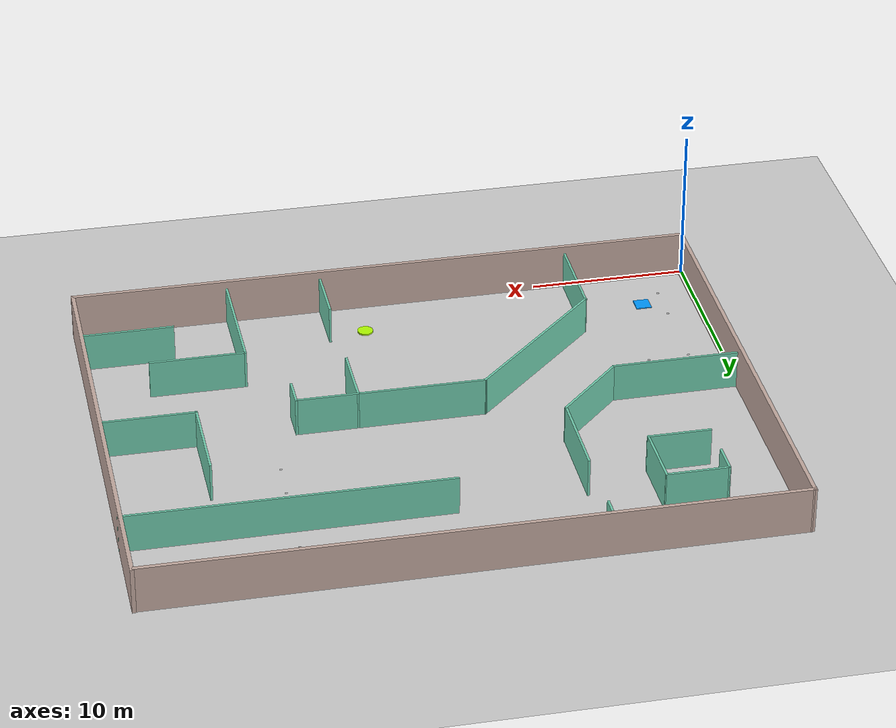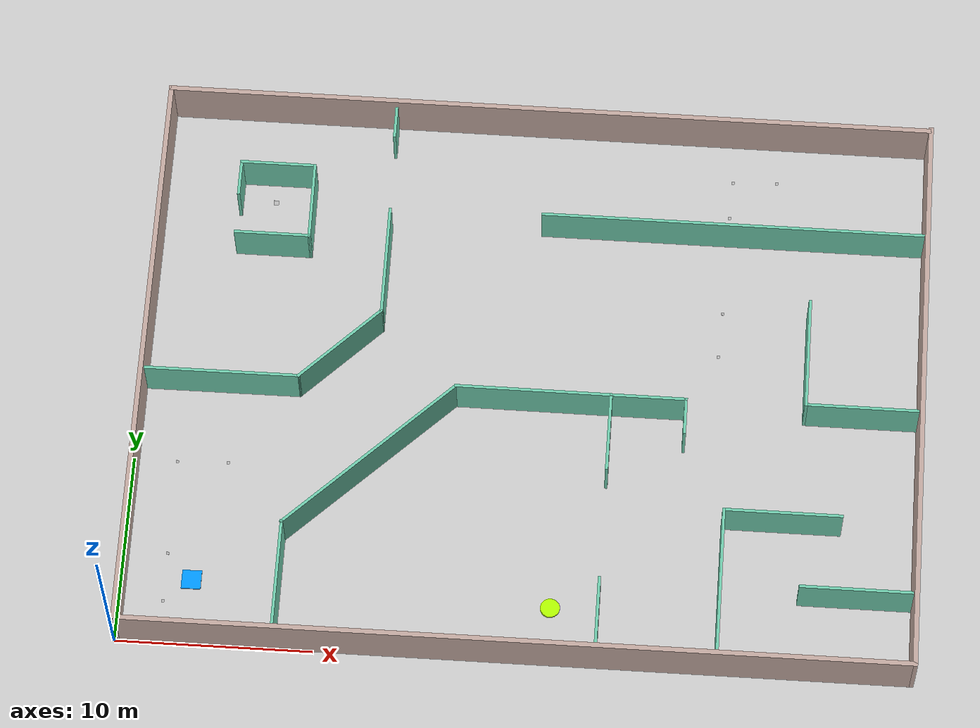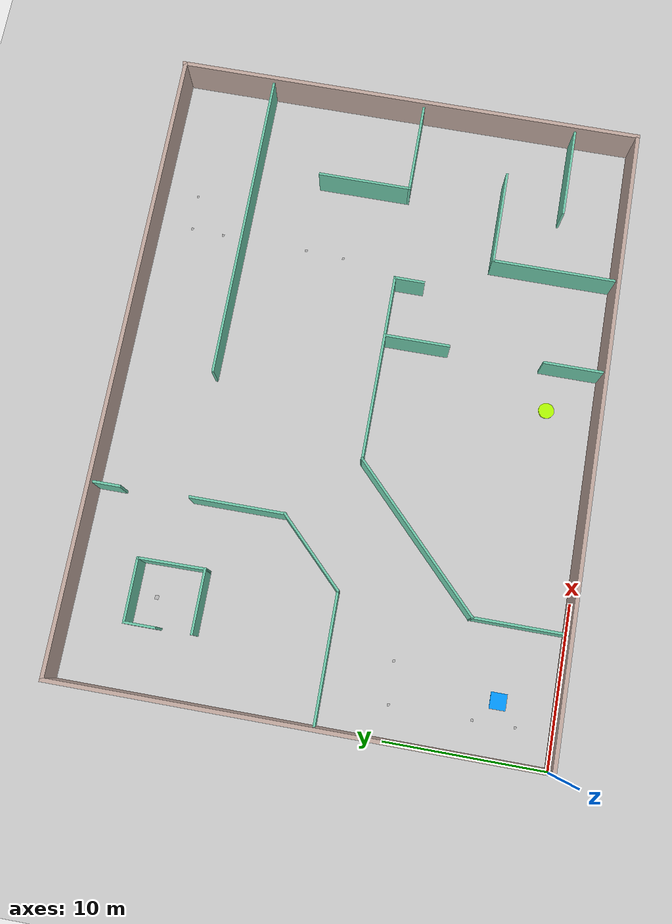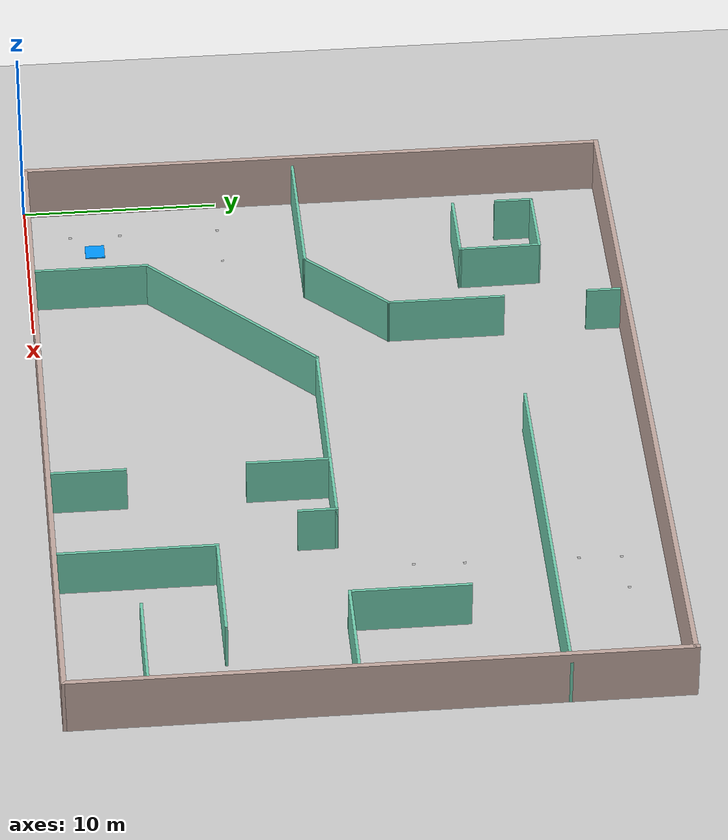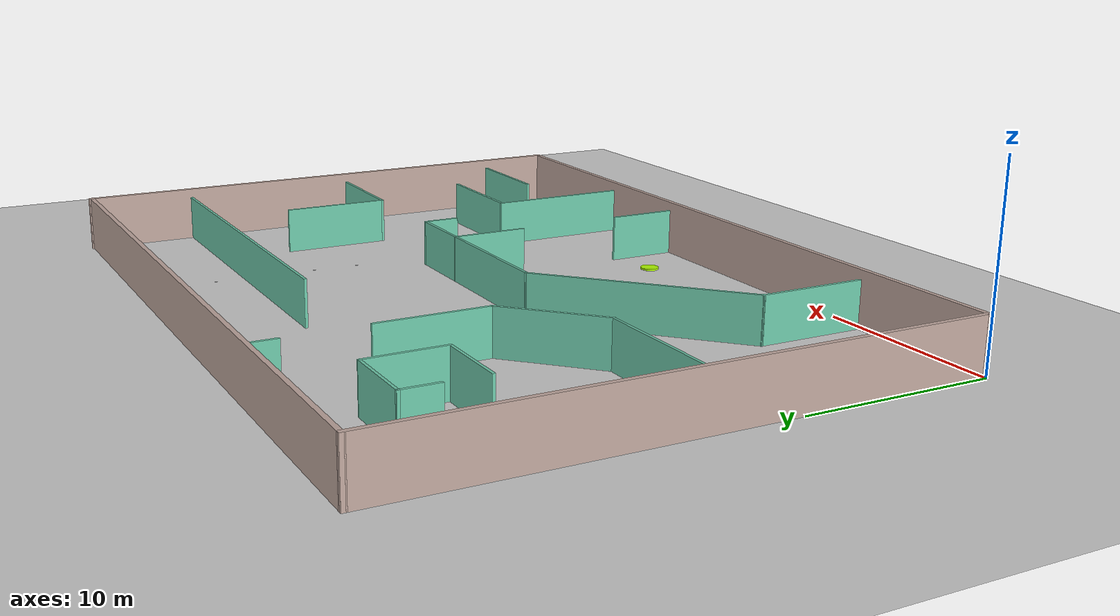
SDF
<sdf version="1.6">
 <world name="default">
  <light name="sun" type="directional">
   <cast_shadows>0</cast_shadows>
   <pose>0 0 10 0 -0 0</pose>
   <diffuse>0.8 0.8 0.8 1</diffuse>
   <specular>0.2 0.2 0.2 1</specular>
   <attenuation>
    <range>1000</range>
    <constant>0.9</constant>
    <linear>0.01</linear>
    <quadratic>0.001</quadratic>
   </attenuation>
   <direction>-0.5 0.1 -0.9</direction>
  </light>
  <plugin name="ros_interface_plugin" filename="librotors_gazebo_ros_interface_plugin.so"/>
  <model name="ground_plane">
   <static>1</static>
   <link name="link">
    <collision name="collision">
     <geometry><plane><normal>0 0 1</normal><size>100 100</size></plane></geometry>
     <surface>
      <contact><collide_bitmask>65535</collide_bitmask></contact>
      <friction><ode><mu>100</mu><mu2>50</mu2></ode></friction>
     </surface>
    </collision>
    <visual name="visual">
     <cast_shadows>0</cast_shadows>
     <geometry><plane><normal>0 0 1</normal><size>100 100</size></plane></geometry>
     <material>
      <script><uri>file://media/materials/scripts/gazebo.material</uri><name>Gazebo/Grey</name></script>
     </material>
    </visual>
   </link>
  </model>
  <gravity>0 0 -9.8</gravity>
  <magnetic_field>6e-06 2.3e-05 -4.2e-05</magnetic_field>
  <atmosphere type="adiabatic"/>
  <physics name="default_physics" default="0" type="ode">
   <max_step_size>0.001</max_step_size>
   <real_time_factor>1</real_time_factor>
   <real_time_update_rate>1000</real_time_update_rate>
  </physics>
  <scene><ambient>0.4 0.4 0.4 1</ambient><background>0.7 0.7 0.7 1</background><shadows>1</shadows></scene>
  <spherical_coordinates>
   <surface_model>EARTH_WGS84</surface_model>
   <latitude_deg>0</latitude_deg>
   <longitude_deg>0</longitude_deg>
   <elevation>0</elevation>
   <heading_deg>0</heading_deg>
  </spherical_coordinates>
  <model name="world_final.world">
   <pose>20.1571 15.1446 0 0 -0 0</pose>
   <link name="Wall_10">
    <collision name="Wall_10_Collision">
     <geometry><box><size>30.25 0.25 3</size></box></geometry>
     <pose>0 0 1.5 0 -0 0</pose>
    </collision>
    <visual name="Wall_10_Visual">
     <pose>0 0 1.5 0 -0 0</pose>
     <geometry><box><size>30.25 0.25 3</size></box></geometry>
     <material>
      <script><uri>file://media/materials/scripts/gazebo.material</uri><name>Gazebo/Grey</name></script>
      <ambient>0.760784 0.662745 0.627451 1</ambient>
     </material>
     <meta><layer>0</layer></meta>
    </visual>
    <pose>-20.0312 -0.019177 0 0 -0 1.5708</pose>
   </link>
   <link name="Wall_16">
    <collision name="Wall_16_Collision">
     <geometry><box><size>11.7015 0.15 2.5</size></box></geometry>
     <pose>0 0 1.25 0 -0 0</pose>
    </collision>
    <visual name="Wall_16_Visual">
     <pose>0 0 1.25 0 -0 0</pose>
     <geometry><box><size>11.7015 0.15 2.5</size></box></geometry>
     <material>
      <script><uri>file://media/materials/scripts/gazebo.material</uri><name>Gazebo/Grey</name></script>
      <ambient>0.435294 0.796078 0.67451 1</ambient>
     </material>
     <meta><layer>0</layer></meta>
    </visual>
    <pose>-7.99118 -5.0937 0 0 -0 0.773461</pose>
   </link>
   <link name="Wall_17">
    <collision name="Wall_17_Collision">
     <geometry><box><size>8.12245 0.15 2.5</size></box></geometry>
     <pose>0 0 1.25 0 -0 0</pose>
    </collision>
    <visual name="Wall_17_Visual">
     <pose>0 0 1.25 0 -0 0</pose>
     <geometry><box><size>8.12245 0.15 2.5</size></box></geometry>
     <material>
      <script><uri>file://media/materials/scripts/gazebo.material</uri><name>Gazebo/Grey</name></script>
      <ambient>0.435294 0.796078 0.67451 1</ambient>
     </material>
     <meta><layer>0</layer></meta>
    </visual>
    <pose>0.127824 -1.0677 0 0 0 -0.002258</pose>
   </link>
   <link name="Wall_19">
    <collision name="Wall_19_Collision">
     <geometry><box><size>6 0.15 2.5</size></box></geometry>
     <pose>0 0 1.25 0 -0 0</pose>
    </collision>
    <visual name="Wall_19_Visual">
     <pose>0 0 1.25 0 -0 0</pose>
     <geometry><box><size>6 0.15 2.5</size></box></geometry>
     <material>
      <script><uri>file://media/materials/scripts/gazebo.material</uri><name>Gazebo/Grey</name></script>
      <ambient>0.435294 0.796078 0.67451 1</ambient>
     </material>
     <meta><layer>0</layer></meta>
    </visual>
    <pose>-12.1237 -12.0537 0 0 0 -1.5708</pose>
   </link>
   <link name="Wall_21">
    <collision name="Wall_21_Collision">
     <geometry><box><size>8.11035 0.15 2.5</size></box></geometry>
     <pose>0 0 1.25 0 -0 0</pose>
    </collision>
    <visual name="Wall_21_Visual">
     <pose>0 0 1.25 0 -0 0</pose>
     <geometry><box><size>8.11035 0.15 2.5</size></box></geometry>
     <material>
      <script><uri>file://media/materials/scripts/gazebo.material</uri><name>Gazebo/Grey</name></script>
      <ambient>0.435294 0.796078 0.67451 1</ambient>
     </material>
     <meta><layer>0</layer></meta>
    </visual>
    <pose>-15.9387 -1.02571 0 0 -0 0.003015</pose>
   </link>
   <link name="Wall_24">
    <collision name="Wall_24_Collision">
     <geometry><box><size>5.75 0.15 2.5</size></box></geometry>
     <pose>0 0 1.25 0 -0 0</pose>
    </collision>
    <visual name="Wall_24_Visual">
     <pose>0 0 1.25 0 -0 0</pose>
     <geometry><box><size>5.75 0.15 2.5</size></box></geometry>
     <material>
      <script><uri>file://media/materials/scripts/gazebo.material</uri><name>Gazebo/Grey</name></script>
      <ambient>0.435294 0.796078 0.67451 1</ambient>
     </material>
     <meta><layer>0</layer></meta>
    </visual>
    <pose>-9.97868 0.966295 0 0 -0 0.785398</pose>
   </link>
   <link name="Wall_26">
    <collision name="Wall_26_Collision">
     <geometry><box><size>6 0.15 2.5</size></box></geometry>
     <pose>0 0 1.25 0 -0 0</pose>
    </collision>
    <visual name="Wall_26_Visual">
     <pose>0 0 1.25 0 -0 0</pose>
     <geometry><box><size>6 0.15 2.5</size></box></geometry>
     <material>
      <script><uri>file://media/materials/scripts/gazebo.material</uri><name>Gazebo/Grey</name></script>
      <ambient>0.435294 0.796078 0.67451 1</ambient>
     </material>
     <meta><layer>0</layer></meta>
    </visual>
    <pose>-7.99868 5.87129 0 0 -0 1.5708</pose>
   </link>
   <link name="Wall_29">
    <collision name="Wall_29_Collision">
     <geometry><box><size>4.23222 0.15 2.5</size></box></geometry>
     <pose>0 0 1.25 0 -0 0</pose>
    </collision>
    <visual name="Wall_29_Visual">
     <pose>0 0 1.25 0 -0 0</pose>
     <geometry><box><size>4.23222 0.15 2.5</size></box></geometry>
     <material>
      <script><uri>file://media/materials/scripts/gazebo.material</uri><name>Gazebo/Grey</name></script>
      <ambient>0.435294 0.796078 0.67451 1</ambient>
     </material>
     <meta><layer>0</layer></meta>
    </visual>
    <pose>4.11432 -3.1177 0 0 0 -1.5708</pose>
   </link>
   <link name="Wall_31">
    <collision name="Wall_31_Collision">
     <geometry><box><size>4 0.15 2.5</size></box></geometry>
     <pose>0 0 1.25 0 -0 0</pose>
    </collision>
    <visual name="Wall_31_Visual">
     <pose>0 0 1.25 0 -0 0</pose>
     <geometry><box><size>4 0.15 2.5</size></box></geometry>
     <material>
      <script><uri>file://media/materials/scripts/gazebo.material</uri><name>Gazebo/Grey</name></script>
      <ambient>0.435294 0.796078 0.67451 1</ambient>
     </material>
     <meta><layer>0</layer></meta>
    </visual>
    <pose>6.03932 -1.07671 0 0 -0 0</pose>
   </link>
   <link name="Wall_33">
    <collision name="Wall_33_Collision">
     <geometry><box><size>6 0.15 2.5</size></box></geometry>
     <pose>0 0 1.25 0 -0 0</pose>
    </collision>
    <visual name="Wall_33_Visual">
     <pose>0 0 1.25 0 -0 0</pose>
     <geometry><box><size>6 0.15 2.5</size></box></geometry>
     <material>
      <script><uri>file://media/materials/scripts/gazebo.material</uri><name>Gazebo/Grey</name></script>
      <ambient>0.435294 0.796078 0.67451 1</ambient>
     </material>
     <meta><layer>0</layer></meta>
    </visual>
    <pose>17.0263 -0.983705 0 0 -0 3.14159</pose>
   </link>
   <link name="Wall_34">
    <collision name="Wall_34_Collision">
     <geometry><box><size>6 0.15 2.5</size></box></geometry>
     <pose>0 0 1.25 0 -0 0</pose>
    </collision>
    <visual name="Wall_34_Visual">
     <pose>0 0 1.25 0 -0 0</pose>
     <geometry><box><size>6 0.15 2.5</size></box></geometry>
     <material>
      <script><uri>file://media/materials/scripts/gazebo.material</uri><name>Gazebo/Grey</name></script>
      <ambient>0.435294 0.796078 0.67451 1</ambient>
     </material>
     <meta><layer>0</layer></meta>
    </visual>
    <pose>14.1013 1.94129 0 0 -0 1.5708</pose>
   </link>
   <link name="Wall_36">
    <collision name="Wall_36_Collision">
     <geometry><box><size>4 0.15 2.5</size></box></geometry>
     <pose>0 0 1.25 0 -0 0</pose>
    </collision>
    <visual name="Wall_36_Visual">
     <pose>0 0 1.25 0 -0 0</pose>
     <geometry><box><size>4 0.15 2.5</size></box></geometry>
     <material>
      <script><uri>file://media/materials/scripts/gazebo.material</uri><name>Gazebo/Grey</name></script>
      <ambient>0.435294 0.796078 0.67451 1</ambient>
     </material>
     <meta><layer>0</layer></meta>
    </visual>
    <pose>4.09632 -13.0997 0 0 0 -1.5708</pose>
   </link>
   <link name="Wall_38">
    <collision name="Wall_38_Collision">
     <geometry><box><size>6 0.15 2.5</size></box></geometry>
     <pose>0 0 1.25 0 -0 0</pose>
    </collision>
    <visual name="Wall_38_Visual">
     <pose>0 0 1.25 0 -0 0</pose>
     <geometry><box><size>6 0.15 2.5</size></box></geometry>
     <material>
      <script><uri>file://media/materials/scripts/gazebo.material</uri><name>Gazebo/Grey</name></script>
      <ambient>0.435294 0.796078 0.67451 1</ambient>
     </material>
     <meta><layer>0</layer></meta>
    </visual>
    <pose>17.1173 -10.9947 0 0 -0 3.14159</pose>
   </link>
   <link name="Wall_40">
    <collision name="Wall_40_Collision">
     <geometry><box><size>6.12079 0.15 2.5</size></box></geometry>
     <pose>0 0 1.25 0 -0 0</pose>
    </collision>
    <visual name="Wall_40_Visual">
     <pose>0 0 1.25 0 -0 0</pose>
     <geometry><box><size>6.12079 0.15 2.5</size></box></geometry>
     <material>
      <script><uri>file://media/materials/scripts/gazebo.material</uri><name>Gazebo/Grey</name></script>
      <ambient>0.435294 0.796078 0.67451 1</ambient>
     </material>
     <meta><layer>0</layer></meta>
    </visual>
    <pose>13.1578 -7.05671 0 0 -0 3.14159</pose>
   </link>
   <link name="Wall_41">
    <collision name="Wall_41_Collision">
     <geometry><box><size>8 0.15 2.5</size></box></geometry>
     <pose>0 0 1.25 0 -0 0</pose>
    </collision>
    <visual name="Wall_41_Visual">
     <pose>0 0 1.25 0 -0 0</pose>
     <geometry><box><size>8 0.15 2.5</size></box></geometry>
     <material>
      <script><uri>file://media/materials/scripts/gazebo.material</uri><name>Gazebo/Grey</name></script>
      <ambient>0.435294 0.796078 0.67451 1</ambient>
     </material>
     <meta><layer>0</layer></meta>
    </visual>
    <pose>10.1723 -10.9817 0 0 0 -1.5708</pose>
   </link>
   <link name="Wall_43">
    <collision name="Wall_43_Collision">
     <geometry><box><size>20.25 0.15 2.5</size></box></geometry>
     <pose>0 0 1.25 0 -0 0</pose>
    </collision>
    <visual name="Wall_43_Visual">
     <pose>0 0 1.25 0 -0 0</pose>
     <geometry><box><size>20.25 0.15 2.5</size></box></geometry>
     <material>
      <script><uri>file://media/materials/scripts/gazebo.material</uri><name>Gazebo/Grey</name></script>
      <ambient>0.435294 0.796078 0.67451 1</ambient>
     </material>
     <meta><layer>0</layer></meta>
    </visual>
    <pose>10.0313 9.0413 0 0 -0 3.14159</pose>
   </link>
   <link name="Wall_45">
    <collision name="Wall_45_Collision">
     <geometry><box><size>4 0.15 2.5</size></box></geometry>
     <pose>0 0 1.25 0 -0 0</pose>
    </collision>
    <visual name="Wall_45_Visual">
     <pose>0 0 1.25 0 -0 0</pose>
     <geometry><box><size>4 0.15 2.5</size></box></geometry>
     <material>
      <script><uri>file://media/materials/scripts/gazebo.material</uri><name>Gazebo/Grey</name></script>
      <ambient>0.435294 0.796078 0.67451 1</ambient>
     </material>
     <meta><layer>0</layer></meta>
    </visual>
    <pose>-14.0597 11.1143 0 0 -0 0</pose>
   </link>
   <link name="Wall_46">
    <collision name="Wall_46_Collision">
     <geometry><box><size>4.25 0.15 2.5</size></box></geometry>
     <pose>0 0 1.25 0 -0 0</pose>
    </collision>
    <visual name="Wall_46_Visual">
     <pose>0 0 1.25 0 -0 0</pose>
     <geometry><box><size>4.25 0.15 2.5</size></box></geometry>
     <material>
      <script><uri>file://media/materials/scripts/gazebo.material</uri><name>Gazebo/Grey</name></script>
      <ambient>0.435294 0.796078 0.67451 1</ambient>
     </material>
     <meta><layer>0</layer></meta>
    </visual>
    <pose>-12.1147 9.06429 0 0 0 -1.56104</pose>
   </link>
   <link name="Wall_47">
    <collision name="Wall_47_Collision">
     <geometry><box><size>4 0.15 2.5</size></box></geometry>
     <pose>0 0 1.25 0 -0 0</pose>
    </collision>
    <visual name="Wall_47_Visual">
     <pose>0 0 1.25 0 -0 0</pose>
     <geometry><box><size>4 0.15 2.5</size></box></geometry>
     <material>
      <script><uri>file://media/materials/scripts/gazebo.material</uri><name>Gazebo/Grey</name></script>
      <ambient>0.435294 0.796078 0.67451 1</ambient>
     </material>
     <meta><layer>0</layer></meta>
    </visual>
    <pose>-14.0197 7.01429 0 0 -0 3.14159</pose>
   </link>
   <link name="Wall_49">
    <collision name="Wall_49_Collision">
     <geometry><box><size>2 0.15 2.5</size></box></geometry>
     <pose>0 0 1.25 0 -0 0</pose>
    </collision>
    <visual name="Wall_49_Visual">
     <pose>0 0 1.25 0 -0 0</pose>
     <geometry><box><size>2 0.15 2.5</size></box></geometry>
     <material>
      <script><uri>file://media/materials/scripts/gazebo.material</uri><name>Gazebo/Grey</name></script>
      <ambient>0.435294 0.796078 0.67451 1</ambient>
     </material>
     <meta><layer>0</layer></meta>
    </visual>
    <pose>-8.10268 14.0863 0 0 0 -1.5708</pose>
   </link>
   <link name="Wall_51">
    <collision name="Wall_51_Collision">
     <geometry><box><size>2 0.15 2.5</size></box></geometry>
     <pose>0 0 1.25 0 -0 0</pose>
    </collision>
    <visual name="Wall_51_Visual">
     <pose>0 0 1.25 0 -0 0</pose>
     <geometry><box><size>2 0.15 2.5</size></box></geometry>
     <material>
      <script><uri>file://media/materials/scripts/gazebo.material</uri><name>Gazebo/Grey</name></script>
      <ambient>0.435294 0.796078 0.67451 1</ambient>
     </material>
     <meta><layer>0</layer></meta>
    </visual>
    <pose>-15.9847 10.1893 0 0 0 -1.5708</pose>
   </link>
   <link name="Wall_53">
    <collision name="Wall_53_Collision">
     <geometry><box><size>2 0.15 2.5</size></box></geometry>
     <pose>0 0 1.25 0 -0 0</pose>
    </collision>
    <visual name="Wall_53_Visual">
     <pose>0 0 1.25 0 -0 0</pose>
     <geometry><box><size>2 0.15 2.5</size></box></geometry>
     <material>
      <script><uri>file://media/materials/scripts/gazebo.material</uri><name>Gazebo/Grey</name></script>
      <ambient>0.435294 0.796078 0.67451 1</ambient>
     </material>
     <meta><layer>0</layer></meta>
    </visual>
    <pose>7.96432 -2.0017 0 0 0 -1.5708</pose>
   </link>
   <link name="Wall_6">
    <collision name="Wall_6_Collision">
     <geometry><box><size>40.25 0.25 3</size></box></geometry>
     <pose>0 0 1.5 0 -0 0</pose>
    </collision>
    <visual name="Wall_6_Visual">
     <pose>0 0 1.5 0 -0 0</pose>
     <geometry><box><size>40.25 0.25 3</size></box></geometry>
     <material>
      <script><uri>file://media/materials/scripts/gazebo.material</uri><name>Gazebo/Grey</name></script>
      <ambient>0.760784 0.662745 0.627451 1</ambient>
     </material>
     <meta><layer>0</layer></meta>
    </visual>
    <pose>-0.031209 14.966 0 0 0 -0.000742</pose>
   </link>
   <link name="Wall_8">
    <collision name="Wall_8_Collision">
     <geometry><box><size>30.25 0.25 3</size></box></geometry>
     <pose>0 0 1.5 0 -0 0</pose>
    </collision>
    <visual name="Wall_8_Visual">
     <pose>0 0 1.5 0 -0 0</pose>
     <geometry><box><size>30.25 0.25 3</size></box></geometry>
     <material>
      <script><uri>file://media/materials/scripts/gazebo.material</uri><name>Gazebo/Grey</name></script>
      <ambient>0.760784 0.662745 0.627451 1</ambient>
     </material>
     <meta><layer>0</layer></meta>
    </visual>
    <pose>20.0303 0.019295 0 0 0 -1.5708</pose>
   </link>
   <link name="Wall_9">
    <collision name="Wall_9_Collision">
     <geometry><box><size>40.3115 0.25 3</size></box></geometry>
     <pose>0 0 1.5 0 -0 0</pose>
    </collision>
    <visual name="Wall_9_Visual">
     <pose>0 0 1.5 0 -0 0</pose>
     <geometry><box><size>40.3115 0.25 3</size></box></geometry>
     <material>
      <script><uri>file://media/materials/scripts/gazebo.material</uri><name>Gazebo/Grey</name></script>
      <ambient>0.760784 0.662745 0.627451 1</ambient>
     </material>
     <meta><layer>0</layer></meta>
    </visual>
    <pose>-0.00044 -14.9999 0 0 0 -3.14063</pose>
   </link>
   <static>1</static>
  </model>
  <model name="charge">
   <link name="link">
    <inertial>
     <mass>1</mass>
     <inertia>
      <ixx>0.166667</ixx>
      <ixy>0</ixy>
      <ixz>0</ixz>
      <iyy>0.166667</iyy>
      <iyz>0</iyz>
      <izz>0.166667</izz>
     </inertia>
    </inertial>
    <visual name="visual">
     <geometry><box><size>1 1 0.069113</size></box></geometry>
     <material>
      <script><name>Gazebo/Grey</name><uri>file://media/materials/scripts/gazebo.material</uri></script>
      <shader type="pixel"><normal_map>__default__</normal_map></shader>
      <ambient>0 0.6 1 1</ambient>
      <diffuse>0.7 0.7 0.7 1</diffuse>
      <specular>0.01 0.01 0.01 1</specular>
      <emissive>0 0 0 1</emissive>
     </material>
     <cast_shadows>0</cast_shadows>
    </visual>
   </link>
   <static>1</static>
   <pose>3.54642 3.52038 0.034557 0 -0 0</pose>
  </model>
  <model name="check">
   <link name="link">
    <inertial>
     <mass>1</mass>
     <inertia><ixx>0.145833</ixx><ixy>0</ixy><ixz>0</ixz><iyy>0.145833</iyy><iyz>0</iyz><izz>0.125</izz></inertia>
    </inertial>
    <visual name="visual">
     <geometry><cylinder><radius>0.5</radius><length>0.104489</length></cylinder></geometry>
     <material>
      <script><name>Gazebo/Grey</name><uri>file://media/materials/scripts/gazebo.material</uri></script>
      <shader type="pixel"><normal_map>__default__</normal_map></shader>
      <ambient>0.7 1 0 1</ambient>
      <diffuse>0.7 0.7 0.7 1</diffuse>
      <specular>0.01 0.01 0.01 1</specular>
      <emissive>0 0 0 1</emissive>
     </material>
     <cast_shadows>0</cast_shadows>
    </visual>
   </link>
   <static>1</static>
   <pose>21.8276 3.13698 0 0 -0 0</pose>
  </model>
  <include><uri>model://marker_husky</uri><pose>6.0 25.0 0.4 0.0 0.0 0.0</pose></include>
  <include><uri>model://marker_0</uri><pose>2.2 2.3 0.001 0.0 0.0 0.0</pose></include>
  <include><uri>model://marker_1</uri><pose>2.2 4.9 0.001 0.0 0.0 0.0</pose></include>
  <include><uri>model://marker_3</uri><pose>2.2 10.0 0.001 0.0 0.0 0.0</pose></include>
  <include><uri>model://marker_10</uri><pose>4.8 10.1 0.001 0.0 0.0 0.0</pose></include>
  <include><uri>model://marker_100</uri><pose>29.7 17.7 0.001 0.0 0.0 0.0</pose></include>
  <include><uri>model://marker_101</uri><pose>29.8 20.2 0.001 0.0 0.0 0.0</pose></include>
  <include><uri>model://marker_102</uri><pose>29.9 25.8 0.001 0.0 0.0 0.0</pose></include>
  <include><uri>model://marker_103</uri><pose>30.0 27.9 0.001 0.0 0.0 0.0</pose></include>
  <include><uri>model://marker_104</uri><pose>32.3 28.0 0.001 0.0 0.0 0.0</pose></include>
 </world>
</sdf>

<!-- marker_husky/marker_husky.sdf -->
<sdf version="1.4">
  <model name="marker_0">
    <static>0</static>
    <link name="link_marker_husky">
      <gravity>false</gravity>
      <visual name="visual_marker_0">
        <geometry>
          <box>
            <size>0.25 0.25 0.001</size>
            <!-- SIZE OF THE MARKER + MARGIN -->
          </box>
        </geometry>
        <material>
          <script>
	    <uri>model://marker_husky/material/scripts</uri>
	    <uri>model://marker_husky/material/textures</uri>
            <name>marker_husky</name>
          </script>
        </material>
      </visual>
      <collision name="collision">
        <geometry>
          <box>
            <size>0.25 0.25 0.02</size>
            <!-- SIZE OF THE MARKER + MARGIN -->
          </box>
        </geometry>
      </collision>
    </link>
  </model>
</sdf>

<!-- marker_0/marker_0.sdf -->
<sdf version="1.4">
  <model name="marker_0">
    <static>1</static>
    <link name="link_marker_0">
      <gravity>false</gravity>
      <visual name="visual_marker_0">
        <geometry>
          <box>
            <size>0.15 0.15 0.001</size>
            <!-- SIZE OF THE MARKER + MARGIN -->
          </box>
        </geometry>
        <material>
          <script>
	    <uri>model://marker_0/material/scripts</uri>
	    <uri>model://marker_0/material/textures</uri>
            <name>marker_0</name>
          </script>
        </material>
      </visual>
      <collision name="collision">
        <geometry>
          <box>
            <size>0.15 0.15 0.02</size>
            <!-- SIZE OF THE MARKER + MARGIN -->
          </box>
        </geometry>
      </collision>
    </link>
  </model>
</sdf>

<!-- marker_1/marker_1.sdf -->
<sdf version="1.4">
  <model name="marker_1">
    <static>1</static>
    <link name="link_marker_1">
      <gravity>false</gravity>
      <visual name="visual_marker_1">
        <geometry>
          <box>
            <size>0.15 0.15 0.001</size>
            <!-- SIZE OF THE MARKER + MARGIN -->
          </box>
        </geometry>
        <material>
          <script>
	    <uri>model://marker_1/material/scripts</uri>
	    <uri>model://marker_1/material/textures</uri>
            <name>marker_1</name>
          </script>
        </material>
      </visual>
      <collision name="collision">
        <geometry>
          <box>
            <size>0.15 0.15 0.02</size>
            <!-- SIZE OF THE MARKER + MARGIN -->
          </box>
        </geometry>
      </collision>
    </link>
  </model>
</sdf>

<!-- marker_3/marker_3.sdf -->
<sdf version="1.4">
  <model name="marker_3">
    <static>1</static>
    <link name="link_marker_3">
      <gravity>false</gravity>
      <visual name="visual_marker_3">
        <geometry>
          <box>
            <size>0.15 0.15 0.001</size>
            <!-- SIZE OF THE MARKER + MARGIN -->
          </box>
        </geometry>
        <material>
          <script>
	    <uri>model://marker_3/material/scripts</uri>
	    <uri>model://marker_3/material/textures</uri>
            <name>marker_3</name>
          </script>
        </material>
      </visual>
      <collision name="collision">
        <geometry>
          <box>
            <size>0.15 0.15 0.02</size>
            <!-- SIZE OF THE MARKER + MARGIN -->
          </box>
        </geometry>
      </collision>
    </link>
  </model>
</sdf>

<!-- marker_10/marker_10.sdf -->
<sdf version="1.4">
  <model name="marker_10">
    <static>1</static>
    <link name="link_marker_10">
      <gravity>false</gravity>
      <visual name="visual_marker_10">
        <geometry>
          <box>
            <size>0.15 0.15 0.001</size>
            <!-- SIZE OF THE MARKER + MARGIN -->
          </box>
        </geometry>
        <material>
          <script>
	    <uri>model://marker_10/material/scripts</uri>
	    <uri>model://marker_10/material/textures</uri>
            <name>marker_10</name>
          </script>
        </material>
      </visual>
      <collision name="collision">
        <geometry>
          <box>
            <size>0.15 0.15 0.02</size>
            <!-- SIZE OF THE MARKER + MARGIN -->
          </box>
        </geometry>
      </collision>
    </link>
  </model>
</sdf>

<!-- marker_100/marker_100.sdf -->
<sdf version="1.4">
  <model name="marker_100">
    <static>1</static>
    <link name="link_marker_100">
      <gravity>false</gravity>
      <visual name="visual_marker_100">
        <geometry>
          <box>
            <size>0.15 0.15 0.001</size>
            <!-- SIZE OF THE MARKER + MARGIN -->
          </box>
        </geometry>
        <material>
          <script>
	    <uri>model://marker_100/material/scripts</uri>
	    <uri>model://marker_100/material/textures</uri>
            <name>marker_100</name>
          </script>
        </material>
      </visual>
      <collision name="collision">
        <geometry>
          <box>
            <size>0.15 0.15 0.02</size>
            <!-- SIZE OF THE MARKER + MARGIN -->
          </box>
        </geometry>
      </collision>
    </link>
  </model>
</sdf>

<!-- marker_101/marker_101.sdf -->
<sdf version="1.4">
  <model name="marker_101">
    <static>1</static>
    <link name="link_marker_101">
      <gravity>false</gravity>
      <visual name="visual_marker_101">
        <geometry>
          <box>
            <size>0.15 0.15 0.001</size>
            <!-- SIZE OF THE MARKER + MARGIN -->
          </box>
        </geometry>
        <material>
          <script>
	    <uri>model://marker_101/material/scripts</uri>
	    <uri>model://marker_101/material/textures</uri>
            <name>marker_101</name>
          </script>
        </material>
      </visual>
      <collision name="collision">
        <geometry>
          <box>
            <size>0.15 0.15 0.02</size>
            <!-- SIZE OF THE MARKER + MARGIN -->
          </box>
        </geometry>
      </collision>
    </link>
  </model>
</sdf>

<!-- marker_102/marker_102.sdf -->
<sdf version="1.4">
  <model name="marker_102">
    <static>1</static>
    <link name="link_marker_102">
      <gravity>false</gravity>
      <visual name="visual_marker_102">
        <geometry>
          <box>
            <size>0.15 0.15 0.001</size>
            <!-- SIZE OF THE MARKER + MARGIN -->
          </box>
        </geometry>
        <material>
          <script>
	    <uri>model://marker_102/material/scripts</uri>
	    <uri>model://marker_102/material/textures</uri>
            <name>marker_102</name>
          </script>
        </material>
      </visual>
      <collision name="collision">
        <geometry>
          <box>
            <size>0.15 0.15 0.02</size>
            <!-- SIZE OF THE MARKER + MARGIN -->
          </box>
        </geometry>
      </collision>
    </link>
  </model>
</sdf>

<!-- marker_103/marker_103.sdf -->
<sdf version="1.4">
  <model name="marker_103">
    <static>1</static>
    <link name="link_marker_103">
      <gravity>false</gravity>
      <visual name="visual_marker_103">
        <geometry>
          <box>
            <size>0.15 0.15 0.001</size>
            <!-- SIZE OF THE MARKER + MARGIN -->
          </box>
        </geometry>
        <material>
          <script>
	    <uri>model://marker_103/material/scripts</uri>
	    <uri>model://marker_103/material/textures</uri>
            <name>marker_103</name>
          </script>
        </material>
      </visual>
      <collision name="collision">
        <geometry>
          <box>
            <size>0.15 0.15 0.02</size>
            <!-- SIZE OF THE MARKER + MARGIN -->
          </box>
        </geometry>
      </collision>
    </link>
  </model>
</sdf>

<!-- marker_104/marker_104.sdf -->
<sdf version="1.4">
  <model name="marker_104">
    <static>1</static>
    <link name="link_marker_104">
      <gravity>false</gravity>
      <visual name="visual_marker_104">
        <geometry>
          <box>
            <size>0.15 0.15 0.001</size>
            <!-- SIZE OF THE MARKER + MARGIN -->
          </box>
        </geometry>
        <material>
          <script>
	    <uri>model://marker_104/material/scripts</uri>
	    <uri>model://marker_104/material/textures</uri>
            <name>marker_104</name>
          </script>
        </material>
      </visual>
      <collision name="collision">
        <geometry>
          <box>
            <size>0.15 0.15 0.02</size>
            <!-- SIZE OF THE MARKER + MARGIN -->
          </box>
        </geometry>
      </collision>
    </link>
  </model>
</sdf>
